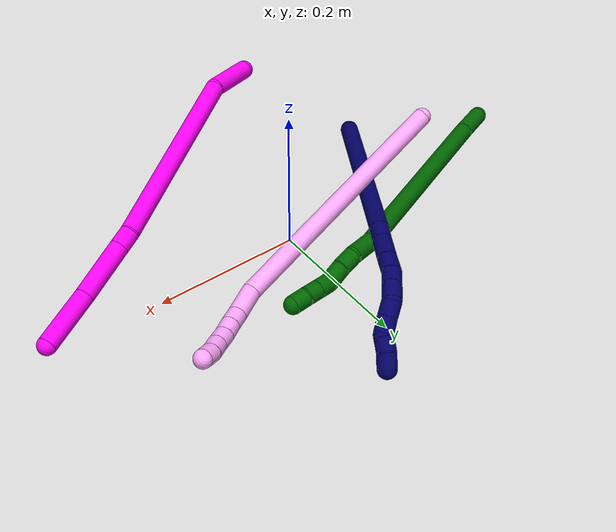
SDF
<sdf version="1.7">
 <world name="default">
  <model name="photoneo_s_sensor">
   <static>1</static>
   <pose>0 0 2 1.57079 1.57079 3.14159</pose>
   <link name="link">
    <inertial><mass>0.1</mass></inertial>
    <sensor name="sensor" type="depth">
     <update_rate>30</update_rate>
     <camera>
      <horizontal_fov>1.22</horizontal_fov>
      <image><width>1920</width><height>1200</height><format>B8G8R8</format></image>
      <clip><near>0.1</near><far>4</far></clip>
      <depth_camera><output>points</output></depth_camera>
     </camera>
     <plugin name="camera_plugin" filename="libgazebo_ros_depth_camera.so">
      <baseline>0.2</baseline>
      <alwaysOn>1</alwaysOn>
      <updateRate>0.0</updateRate>
      <cameraName>camera_ir</cameraName>
      <imageTopicName>/camera/color/image_raw</imageTopicName>
      <cameraInfoTopicName>/camera/color/camera_info</cameraInfoTopicName>
      <depthImageTopicName>/camera/depth/image_raw</depthImageTopicName>
      <depthImageCameraInfoTopicName>/camera/depth/camera_info</depthImageCameraInfoTopicName>
      <pointCloudTopicName>/camera/depth/points</pointCloudTopicName>
      <frameName>fr_optical</frameName>
      <pointCloudCutoff>0.1</pointCloudCutoff>
      <pointCloudCutoffMax>2.0</pointCloudCutoffMax>
      <distortionK1>0</distortionK1>
      <distortionK2>0</distortionK2>
      <distortionK3>0</distortionK3>
      <distortionT1>0</distortionT1>
      <distortionT2>0</distortionT2>
      <CxPrime>0</CxPrime>
      <Cx>0</Cx>
      <Cy>0</Cy>
      <focalLength>0</focalLength>
      <hackBaseline>0</hackBaseline>
     </plugin>
    </sensor>
   </link>
  </model>
  <model name="4">
   <static>0</static>
   <link name="4">
    <collision name="collision-cylinder-e_1_1_4">
     <pose>0.152644 0.08548 -0.040741 -2.01556 1.01555 -1.44513</pose>
     <geometry><cylinder><radius>0.0125</radius><length>0.359259</length></cylinder></geometry>
     <surface>
      <friction><ode><mu>1.16</mu><mu2>1.16</mu2><slip1>0</slip1><slip2>0</slip2></ode></friction>
      <contact><ode><kp>1e+06</kp><kd>1</kd><max_vel>0</max_vel><min_depth>0.001</min_depth></ode></contact>
     </surface>
    </collision>
    <visual name="visual-cylinder-e_1_1_4">
     <pose>0.152644 0.08548 -0.040741 -2.01556 1.01555 -1.44513</pose>
     <geometry><cylinder><radius>0.0125</radius><length>0.359259</length></cylinder></geometry>
     <material><ambient>1 0.65098 0.996078 1</ambient></material>
    </visual>
    <collision name="collision-cylinder-e_2_4_5">
     <pose>0.320754 0.183616 -0.081078 -1.53892 0.884749 -0.860328</pose>
     <geometry><cylinder><radius>0.0125</radius><length>0.039977</length></cylinder></geometry>
     <surface>
      <friction><ode><mu>1.16</mu><mu2>1.16</mu2><slip1>0</slip1><slip2>0</slip2></ode></friction>
      <contact><ode><kp>1e+06</kp><kd>1</kd><max_vel>0</max_vel><min_depth>0.001</min_depth></ode></contact>
     </surface>
    </collision>
    <visual name="visual-cylinder-e_2_4_5">
     <pose>0.320754 0.183616 -0.081078 -1.53892 0.884749 -0.860328</pose>
     <geometry><cylinder><radius>0.0125</radius><length>0.039977</length></cylinder></geometry>
     <material><ambient>1 0.65098 0.996078 1</ambient></material>
    </visual>
    <collision name="collision-cylinder-e_3_5_6">
     <pose>0.344297 0.202163 -0.078893 -1.27714 0.919701 -0.704615</pose>
     <geometry><cylinder><radius>0.0125</radius><length>0.020308</length></cylinder></geometry>
     <surface>
      <friction><ode><mu>1.16</mu><mu2>1.16</mu2><slip1>0</slip1><slip2>0</slip2></ode></friction>
      <contact><ode><kp>1e+06</kp><kd>1</kd><max_vel>0</max_vel><min_depth>0.001</min_depth></ode></contact>
     </surface>
    </collision>
    <visual name="visual-cylinder-e_3_5_6">
     <pose>0.344297 0.202163 -0.078893 -1.27714 0.919701 -0.704615</pose>
     <geometry><cylinder><radius>0.0125</radius><length>0.020308</length></cylinder></geometry>
     <material><ambient>1 0.65098 0.996078 1</ambient></material>
    </visual>
    <collision name="collision-cylinder-e_4_6_7">
     <pose>0.360102 0.214135 -0.075028 -1.24063 0.876878 -0.646424</pose>
     <geometry><cylinder><radius>0.0125</radius><length>0.020106</length></cylinder></geometry>
     <surface>
      <friction><ode><mu>1.16</mu><mu2>1.16</mu2><slip1>0</slip1><slip2>0</slip2></ode></friction>
      <contact><ode><kp>1e+06</kp><kd>1</kd><max_vel>0</max_vel><min_depth>0.001</min_depth></ode></contact>
     </surface>
    </collision>
    <visual name="visual-cylinder-e_4_6_7">
     <pose>0.360102 0.214135 -0.075028 -1.24063 0.876878 -0.646424</pose>
     <geometry><cylinder><radius>0.0125</radius><length>0.020106</length></cylinder></geometry>
     <material><ambient>1 0.65098 0.996078 1</ambient></material>
    </visual>
    <collision name="collision-cylinder-e_5_7_8">
     <pose>0.375994 0.225404 -0.070085 -1.0672 0.94325 -0.58529</pose>
     <geometry><cylinder><radius>0.0125</radius><length>0.020172</length></cylinder></geometry>
     <surface>
      <friction><ode><mu>1.16</mu><mu2>1.16</mu2><slip1>0</slip1><slip2>0</slip2></ode></friction>
      <contact><ode><kp>1e+06</kp><kd>1</kd><max_vel>0</max_vel><min_depth>0.001</min_depth></ode></contact>
     </surface>
    </collision>
    <visual name="visual-cylinder-e_5_7_8">
     <pose>0.375994 0.225404 -0.070085 -1.0672 0.94325 -0.58529</pose>
     <geometry><cylinder><radius>0.0125</radius><length>0.020172</length></cylinder></geometry>
     <material><ambient>1 0.65098 0.996078 1</ambient></material>
    </visual>
    <collision name="collision-cylinder-e_6_8_9">
     <pose>0.391863 0.235803 -0.063366 -0.933111 0.871049 -0.460403</pose>
     <geometry><cylinder><radius>0.0125</radius><length>0.020143</length></cylinder></geometry>
     <surface>
      <friction><ode><mu>1.16</mu><mu2>1.16</mu2><slip1>0</slip1><slip2>0</slip2></ode></friction>
      <contact><ode><kp>1e+06</kp><kd>1</kd><max_vel>0</max_vel><min_depth>0.001</min_depth></ode></contact>
     </surface>
    </collision>
    <visual name="visual-cylinder-e_6_8_9">
     <pose>0.391863 0.235803 -0.063366 -0.933111 0.871049 -0.460403</pose>
     <geometry><cylinder><radius>0.0125</radius><length>0.020143</length></cylinder></geometry>
     <material><ambient>1 0.65098 0.996078 1</ambient></material>
    </visual>
    <collision name="collision-cylinder-e_7_9_2">
     <pose>0.408184 0.244461 -0.055731 -0.740165 1.03544 -0.434928</pose>
     <geometry><cylinder><radius>0.0125</radius><length>0.020035</length></cylinder></geometry>
     <surface>
      <friction><ode><mu>1.16</mu><mu2>1.16</mu2><slip1>0</slip1><slip2>0</slip2></ode></friction>
      <contact><ode><kp>1e+06</kp><kd>1</kd><max_vel>0</max_vel><min_depth>0.001</min_depth></ode></contact>
     </surface>
    </collision>
    <visual name="visual-cylinder-e_7_9_2">
     <pose>0.408184 0.244461 -0.055731 -0.740165 1.03544 -0.434928</pose>
     <geometry><cylinder><radius>0.0125</radius><length>0.020035</length></cylinder></geometry>
     <material><ambient>1 0.65098 0.996078 1</ambient></material>
    </visual>
    <collision name="collision-sphere-2">
     <pose>0.4168 0.247907 -0.051958 0 -0 0</pose>
     <geometry><sphere><radius>0.0125</radius></sphere></geometry>
     <surface>
      <friction><ode><mu>1.16</mu><mu2>1.16</mu2><slip1>0</slip1><slip2>0</slip2></ode></friction>
      <contact><ode><kp>1e+06</kp><kd>1</kd><max_vel>0</max_vel><min_depth>0.001</min_depth></ode></contact>
     </surface>
    </collision>
    <visual name="visual-sphere-2">
     <pose>0.4168 0.247907 -0.051958 0 -0 0</pose>
     <geometry><sphere><radius>0.0125</radius></sphere></geometry>
     <material><ambient>1 0.65098 0.996078 1</ambient></material>
    </visual>
    <collision name="collision-sphere-9">
     <pose>0.399568 0.241014 -0.059504 0 -0 0</pose>
     <geometry><sphere><radius>0.0125</radius></sphere></geometry>
     <surface>
      <friction><ode><mu>1.16</mu><mu2>1.16</mu2><slip1>0</slip1><slip2>0</slip2></ode></friction>
      <contact><ode><kp>1e+06</kp><kd>1</kd><max_vel>0</max_vel><min_depth>0.001</min_depth></ode></contact>
     </surface>
    </collision>
    <visual name="visual-sphere-9">
     <pose>0.399568 0.241014 -0.059504 0 -0 0</pose>
     <geometry><sphere><radius>0.0125</radius></sphere></geometry>
     <material><ambient>1 0.65098 0.996078 1</ambient></material>
    </visual>
    <collision name="collision-sphere-4">
     <pose>0.305288 0.17096 -0.081482 0 -0 0</pose>
     <geometry><sphere><radius>0.0125</radius></sphere></geometry>
     <surface>
      <friction><ode><mu>1.16</mu><mu2>1.16</mu2><slip1>0</slip1><slip2>0</slip2></ode></friction>
      <contact><ode><kp>1e+06</kp><kd>1</kd><max_vel>0</max_vel><min_depth>0.001</min_depth></ode></contact>
     </surface>
    </collision>
    <visual name="visual-sphere-4">
     <pose>0.305288 0.17096 -0.081482 0 -0 0</pose>
     <geometry><sphere><radius>0.0125</radius></sphere></geometry>
     <material><ambient>1 0.65098 0.996078 1</ambient></material>
    </visual>
    <collision name="collision-sphere-1">
     <geometry><sphere><radius>0.0125</radius></sphere></geometry>
     <surface>
      <friction><ode><mu>1.16</mu><mu2>1.16</mu2><slip1>0</slip1><slip2>0</slip2></ode></friction>
      <contact><ode><kp>1e+06</kp><kd>1</kd><max_vel>0</max_vel><min_depth>0.001</min_depth></ode></contact>
     </surface>
    </collision>
    <visual name="visual-sphere-1">
     <geometry><sphere><radius>0.0125</radius></sphere></geometry>
     <material><ambient>1 0.65098 0.996078 1</ambient></material>
    </visual>
    <collision name="collision-sphere-8">
     <pose>0.384159 0.230591 -0.067227 0 -0 0</pose>
     <geometry><sphere><radius>0.0125</radius></sphere></geometry>
     <surface>
      <friction><ode><mu>1.16</mu><mu2>1.16</mu2><slip1>0</slip1><slip2>0</slip2></ode></friction>
      <contact><ode><kp>1e+06</kp><kd>1</kd><max_vel>0</max_vel><min_depth>0.001</min_depth></ode></contact>
     </surface>
    </collision>
    <visual name="visual-sphere-8">
     <pose>0.384159 0.230591 -0.067227 0 -0 0</pose>
     <geometry><sphere><radius>0.0125</radius></sphere></geometry>
     <material><ambient>1 0.65098 0.996078 1</ambient></material>
    </visual>
    <collision name="collision-sphere-5">
     <pose>0.33622 0.196272 -0.080674 0 -0 0</pose>
     <geometry><sphere><radius>0.0125</radius></sphere></geometry>
     <surface>
      <friction><ode><mu>1.16</mu><mu2>1.16</mu2><slip1>0</slip1><slip2>0</slip2></ode></friction>
      <contact><ode><kp>1e+06</kp><kd>1</kd><max_vel>0</max_vel><min_depth>0.001</min_depth></ode></contact>
     </surface>
    </collision>
    <visual name="visual-sphere-5">
     <pose>0.33622 0.196272 -0.080674 0 -0 0</pose>
     <geometry><sphere><radius>0.0125</radius></sphere></geometry>
     <material><ambient>1 0.65098 0.996078 1</ambient></material>
    </visual>
    <collision name="collision-sphere-6">
     <pose>0.352374 0.208053 -0.077112 0 -0 0</pose>
     <geometry><sphere><radius>0.0125</radius></sphere></geometry>
     <surface>
      <friction><ode><mu>1.16</mu><mu2>1.16</mu2><slip1>0</slip1><slip2>0</slip2></ode></friction>
      <contact><ode><kp>1e+06</kp><kd>1</kd><max_vel>0</max_vel><min_depth>0.001</min_depth></ode></contact>
     </surface>
    </collision>
    <visual name="visual-sphere-6">
     <pose>0.352374 0.208053 -0.077112 0 -0 0</pose>
     <geometry><sphere><radius>0.0125</radius></sphere></geometry>
     <material><ambient>1 0.65098 0.996078 1</ambient></material>
    </visual>
    <collision name="collision-sphere-7">
     <pose>0.36783 0.220217 -0.072943 0 -0 0</pose>
     <geometry><sphere><radius>0.0125</radius></sphere></geometry>
     <surface>
      <friction><ode><mu>1.16</mu><mu2>1.16</mu2><slip1>0</slip1><slip2>0</slip2></ode></friction>
      <contact><ode><kp>1e+06</kp><kd>1</kd><max_vel>0</max_vel><min_depth>0.001</min_depth></ode></contact>
     </surface>
    </collision>
    <visual name="visual-sphere-7">
     <pose>0.36783 0.220217 -0.072943 0 -0 0</pose>
     <geometry><sphere><radius>0.0125</radius></sphere></geometry>
     <material><ambient>1 0.65098 0.996078 1</ambient></material>
    </visual>
    <inertial>
     <pose>0.211099 0.12131 -0.04959 0 -0 0</pose>
     <mass>0.5</mass>
     <inertia>
      <ixx>-0.001739</ixx>
      <ixy>0</ixy>
      <ixz>0</ixz>
      <iyy>0.000738</iyy>
      <iyz>0</iyz>
      <izz>-0.005164</izz>
     </inertia>
    </inertial>
   </link>
   <pose>-0.234493 -0.011469 0.094542 -0.520944 -0.255443 -0.087855</pose>
  </model>
  <model name="6">
   <static>0</static>
   <link name="6">
    <collision name="collision-cylinder-e_1_1_4">
     <pose>0.020209 0.005218 -0.014325 -2.79229 0.924495 -2.46088</pose>
     <geometry><cylinder><radius>0.0125</radius><length>0.050628</length></cylinder></geometry>
     <surface>
      <friction><ode><mu>1.16</mu><mu2>1.16</mu2><slip1>0</slip1><slip2>0</slip2></ode></friction>
      <contact><ode><kp>1e+06</kp><kd>1</kd><max_vel>0</max_vel><min_depth>0.001</min_depth></ode></contact>
     </surface>
    </collision>
    <visual name="visual-cylinder-e_1_1_4">
     <pose>0.020209 0.005218 -0.014325 -2.79229 0.924495 -2.46088</pose>
     <geometry><cylinder><radius>0.0125</radius><length>0.050628</length></cylinder></geometry>
     <material><ambient>0 0.392157 0.003922 1</ambient></material>
    </visual>
    <collision name="collision-cylinder-e_2_4_5">
     <pose>0.15849 0.043932 -0.114631 -2.77011 0.907425 -2.40598</pose>
     <geometry><cylinder><radius>0.0125</radius><length>0.299708</length></cylinder></geometry>
     <surface>
      <friction><ode><mu>1.16</mu><mu2>1.16</mu2><slip1>0</slip1><slip2>0</slip2></ode></friction>
      <contact><ode><kp>1e+06</kp><kd>1</kd><max_vel>0</max_vel><min_depth>0.001</min_depth></ode></contact>
     </surface>
    </collision>
    <visual name="visual-cylinder-e_2_4_5">
     <pose>0.15849 0.043932 -0.114631 -2.77011 0.907425 -2.40598</pose>
     <geometry><cylinder><radius>0.0125</radius><length>0.299708</length></cylinder></geometry>
     <material><ambient>0 0.392157 0.003922 1</ambient></material>
    </visual>
    <collision name="collision-cylinder-e_3_5_6">
     <pose>0.293527 0.079375 -0.210938 -2.95523 1.01628 -2.80909</pose>
     <geometry><cylinder><radius>0.0125</radius><length>0.039906</length></cylinder></geometry>
     <surface>
      <friction><ode><mu>1.16</mu><mu2>1.16</mu2><slip1>0</slip1><slip2>0</slip2></ode></friction>
      <contact><ode><kp>1e+06</kp><kd>1</kd><max_vel>0</max_vel><min_depth>0.001</min_depth></ode></contact>
     </surface>
    </collision>
    <visual name="visual-cylinder-e_3_5_6">
     <pose>0.293527 0.079375 -0.210938 -2.95523 1.01628 -2.80909</pose>
     <geometry><cylinder><radius>0.0125</radius><length>0.039906</length></cylinder></geometry>
     <material><ambient>0 0.392157 0.003922 1</ambient></material>
    </visual>
    <collision name="collision-cylinder-e_4_6_7">
     <pose>0.317815 0.081483 -0.230494 -3.12409 0.670611 -3.09136</pose>
     <geometry><cylinder><radius>0.0125</radius><length>0.023572</length></cylinder></geometry>
     <surface>
      <friction><ode><mu>1.16</mu><mu2>1.16</mu2><slip1>0</slip1><slip2>0</slip2></ode></friction>
      <contact><ode><kp>1e+06</kp><kd>1</kd><max_vel>0</max_vel><min_depth>0.001</min_depth></ode></contact>
     </surface>
    </collision>
    <visual name="visual-cylinder-e_4_6_7">
     <pose>0.317815 0.081483 -0.230494 -3.12409 0.670611 -3.09136</pose>
     <geometry><cylinder><radius>0.0125</radius><length>0.023572</length></cylinder></geometry>
     <material><ambient>0 0.392157 0.003922 1</ambient></material>
    </visual>
    <collision name="collision-cylinder-e_5_7_8">
     <pose>0.331814 0.081884 -0.250855 -3.12007 0.540139 -3.06388</pose>
     <geometry><cylinder><radius>0.0125</radius><length>0.025958</length></cylinder></geometry>
     <surface>
      <friction><ode><mu>1.16</mu><mu2>1.16</mu2><slip1>0</slip1><slip2>0</slip2></ode></friction>
      <contact><ode><kp>1e+06</kp><kd>1</kd><max_vel>0</max_vel><min_depth>0.001</min_depth></ode></contact>
     </surface>
    </collision>
    <visual name="visual-cylinder-e_5_7_8">
     <pose>0.331814 0.081884 -0.250855 -3.12007 0.540139 -3.06388</pose>
     <geometry><cylinder><radius>0.0125</radius><length>0.025958</length></cylinder></geometry>
     <material><ambient>0 0.392157 0.003922 1</ambient></material>
    </visual>
    <collision name="collision-cylinder-e_6_8_9">
     <pose>0.346712 0.08155 -0.267708 3.04173 0.960383 2.95029</pose>
     <geometry><cylinder><radius>0.0125</radius><length>0.020073</length></cylinder></geometry>
     <surface>
      <friction><ode><mu>1.16</mu><mu2>1.16</mu2><slip1>0</slip1><slip2>0</slip2></ode></friction>
      <contact><ode><kp>1e+06</kp><kd>1</kd><max_vel>0</max_vel><min_depth>0.001</min_depth></ode></contact>
     </surface>
    </collision>
    <visual name="visual-cylinder-e_6_8_9">
     <pose>0.346712 0.08155 -0.267708 3.04173 0.960383 2.95029</pose>
     <geometry><cylinder><radius>0.0125</radius><length>0.020073</length></cylinder></geometry>
     <material><ambient>0 0.392157 0.003922 1</ambient></material>
    </visual>
    <collision name="collision-cylinder-e_7_9_10">
     <pose>0.363188 0.08041 -0.279125 3.04249 0.964573 2.9527</pose>
     <geometry><cylinder><radius>0.0125</radius><length>0.020081</length></cylinder></geometry>
     <surface>
      <friction><ode><mu>1.16</mu><mu2>1.16</mu2><slip1>0</slip1><slip2>0</slip2></ode></friction>
      <contact><ode><kp>1e+06</kp><kd>1</kd><max_vel>0</max_vel><min_depth>0.001</min_depth></ode></contact>
     </surface>
    </collision>
    <visual name="visual-cylinder-e_7_9_10">
     <pose>0.363188 0.08041 -0.279125 3.04249 0.964573 2.9527</pose>
     <geometry><cylinder><radius>0.0125</radius><length>0.020081</length></cylinder></geometry>
     <material><ambient>0 0.392157 0.003922 1</ambient></material>
    </visual>
    <collision name="collision-cylinder-e_8_10_2">
     <pose>0.378521 0.078194 -0.291736 2.90736 0.783209 2.58645</pose>
     <geometry><cylinder><radius>0.0125</radius><length>0.020073</length></cylinder></geometry>
     <surface>
      <friction><ode><mu>1.16</mu><mu2>1.16</mu2><slip1>0</slip1><slip2>0</slip2></ode></friction>
      <contact><ode><kp>1e+06</kp><kd>1</kd><max_vel>0</max_vel><min_depth>0.001</min_depth></ode></contact>
     </surface>
    </collision>
    <visual name="visual-cylinder-e_8_10_2">
     <pose>0.378521 0.078194 -0.291736 2.90736 0.783209 2.58645</pose>
     <geometry><cylinder><radius>0.0125</radius><length>0.020073</length></cylinder></geometry>
     <material><ambient>0 0.392157 0.003922 1</ambient></material>
    </visual>
    <collision name="collision-sphere-2">
     <pose>0.385602 0.076543 -0.298654 0 -0 0</pose>
     <geometry><sphere><radius>0.0125</radius></sphere></geometry>
     <surface>
      <friction><ode><mu>1.16</mu><mu2>1.16</mu2><slip1>0</slip1><slip2>0</slip2></ode></friction>
      <contact><ode><kp>1e+06</kp><kd>1</kd><max_vel>0</max_vel><min_depth>0.001</min_depth></ode></contact>
     </surface>
    </collision>
    <visual name="visual-sphere-2">
     <pose>0.385602 0.076543 -0.298654 0 -0 0</pose>
     <geometry><sphere><radius>0.0125</radius></sphere></geometry>
     <material><ambient>0 0.392157 0.003922 1</ambient></material>
    </visual>
    <collision name="collision-sphere-10">
     <pose>0.371439 0.079844 -0.284818 0 -0 0</pose>
     <geometry><sphere><radius>0.0125</radius></sphere></geometry>
     <surface>
      <friction><ode><mu>1.16</mu><mu2>1.16</mu2><slip1>0</slip1><slip2>0</slip2></ode></friction>
      <contact><ode><kp>1e+06</kp><kd>1</kd><max_vel>0</max_vel><min_depth>0.001</min_depth></ode></contact>
     </surface>
    </collision>
    <visual name="visual-sphere-10">
     <pose>0.371439 0.079844 -0.284818 0 -0 0</pose>
     <geometry><sphere><radius>0.0125</radius></sphere></geometry>
     <material><ambient>0 0.392157 0.003922 1</ambient></material>
    </visual>
    <collision name="collision-sphere-9">
     <pose>0.354936 0.080976 -0.273432 0 -0 0</pose>
     <geometry><sphere><radius>0.0125</radius></sphere></geometry>
     <surface>
      <friction><ode><mu>1.16</mu><mu2>1.16</mu2><slip1>0</slip1><slip2>0</slip2></ode></friction>
      <contact><ode><kp>1e+06</kp><kd>1</kd><max_vel>0</max_vel><min_depth>0.001</min_depth></ode></contact>
     </surface>
    </collision>
    <visual name="visual-sphere-9">
     <pose>0.354936 0.080976 -0.273432 0 -0 0</pose>
     <geometry><sphere><radius>0.0125</radius></sphere></geometry>
     <material><ambient>0 0.392157 0.003922 1</ambient></material>
    </visual>
    <collision name="collision-sphere-4">
     <pose>0.040418 0.010435 -0.028649 0 -0 0</pose>
     <geometry><sphere><radius>0.0125</radius></sphere></geometry>
     <surface>
      <friction><ode><mu>1.16</mu><mu2>1.16</mu2><slip1>0</slip1><slip2>0</slip2></ode></friction>
      <contact><ode><kp>1e+06</kp><kd>1</kd><max_vel>0</max_vel><min_depth>0.001</min_depth></ode></contact>
     </surface>
    </collision>
    <visual name="visual-sphere-4">
     <pose>0.040418 0.010435 -0.028649 0 -0 0</pose>
     <geometry><sphere><radius>0.0125</radius></sphere></geometry>
     <material><ambient>0 0.392157 0.003922 1</ambient></material>
    </visual>
    <collision name="collision-sphere-1">
     <geometry><sphere><radius>0.0125</radius></sphere></geometry>
     <surface>
      <friction><ode><mu>1.16</mu><mu2>1.16</mu2><slip1>0</slip1><slip2>0</slip2></ode></friction>
      <contact><ode><kp>1e+06</kp><kd>1</kd><max_vel>0</max_vel><min_depth>0.001</min_depth></ode></contact>
     </surface>
    </collision>
    <visual name="visual-sphere-1">
     <geometry><sphere><radius>0.0125</radius></sphere></geometry>
     <material><ambient>0 0.392157 0.003922 1</ambient></material>
    </visual>
    <collision name="collision-sphere-8">
     <pose>0.338488 0.082124 -0.261984 0 -0 0</pose>
     <geometry><sphere><radius>0.0125</radius></sphere></geometry>
     <surface>
      <friction><ode><mu>1.16</mu><mu2>1.16</mu2><slip1>0</slip1><slip2>0</slip2></ode></friction>
      <contact><ode><kp>1e+06</kp><kd>1</kd><max_vel>0</max_vel><min_depth>0.001</min_depth></ode></contact>
     </surface>
    </collision>
    <visual name="visual-sphere-8">
     <pose>0.338488 0.082124 -0.261984 0 -0 0</pose>
     <geometry><sphere><radius>0.0125</radius></sphere></geometry>
     <material><ambient>0 0.392157 0.003922 1</ambient></material>
    </visual>
    <collision name="collision-sphere-5">
     <pose>0.276563 0.077428 -0.200614 0 -0 0</pose>
     <geometry><sphere><radius>0.0125</radius></sphere></geometry>
     <surface>
      <friction><ode><mu>1.16</mu><mu2>1.16</mu2><slip1>0</slip1><slip2>0</slip2></ode></friction>
      <contact><ode><kp>1e+06</kp><kd>1</kd><max_vel>0</max_vel><min_depth>0.001</min_depth></ode></contact>
     </surface>
    </collision>
    <visual name="visual-sphere-5">
     <pose>0.276563 0.077428 -0.200614 0 -0 0</pose>
     <geometry><sphere><radius>0.0125</radius></sphere></geometry>
     <material><ambient>0 0.392157 0.003922 1</ambient></material>
    </visual>
    <collision name="collision-sphere-6">
     <pose>0.31049 0.081321 -0.221262 0 -0 0</pose>
     <geometry><sphere><radius>0.0125</radius></sphere></geometry>
     <surface>
      <friction><ode><mu>1.16</mu><mu2>1.16</mu2><slip1>0</slip1><slip2>0</slip2></ode></friction>
      <contact><ode><kp>1e+06</kp><kd>1</kd><max_vel>0</max_vel><min_depth>0.001</min_depth></ode></contact>
     </surface>
    </collision>
    <visual name="visual-sphere-6">
     <pose>0.31049 0.081321 -0.221262 0 -0 0</pose>
     <geometry><sphere><radius>0.0125</radius></sphere></geometry>
     <material><ambient>0 0.392157 0.003922 1</ambient></material>
    </visual>
    <collision name="collision-sphere-7">
     <pose>0.325139 0.081644 -0.239726 0 -0 0</pose>
     <geometry><sphere><radius>0.0125</radius></sphere></geometry>
     <surface>
      <friction><ode><mu>1.16</mu><mu2>1.16</mu2><slip1>0</slip1><slip2>0</slip2></ode></friction>
      <contact><ode><kp>1e+06</kp><kd>1</kd><max_vel>0</max_vel><min_depth>0.001</min_depth></ode></contact>
     </surface>
    </collision>
    <visual name="visual-sphere-7">
     <pose>0.325139 0.081644 -0.239726 0 -0 0</pose>
     <geometry><sphere><radius>0.0125</radius></sphere></geometry>
     <material><ambient>0 0.392157 0.003922 1</ambient></material>
    </visual>
    <inertial>
     <pose>0.196386 0.050932 -0.144557 0 -0 0</pose>
     <mass>0.5</mass>
     <inertia>
      <ixx>-0.001952</ixx>
      <ixy>0</ixy>
      <ixz>0</ixz>
      <iyy>0.001086</iyy>
      <iyz>0</iyz>
      <izz>-0.002329</izz>
     </inertia>
    </inertial>
   </link>
   <pose>-0.380441 -0.045178 0.012963 0.032462 -0.683677 0.169148</pose>
  </model>
  <model name="7">
   <static>0</static>
   <link name="7">
    <collision name="collision-cylinder-e_1_1_4">
     <pose>0.04597 0.096929 0.090964 -0.817135 0.33295 -0.145235</pose>
     <geometry><cylinder><radius>0.0125</radius><length>0.281304</length></cylinder></geometry>
     <surface>
      <friction><ode><mu>1.16</mu><mu2>1.16</mu2><slip1>0</slip1><slip2>0</slip2></ode></friction>
      <contact><ode><kp>1e+06</kp><kd>1</kd><max_vel>0</max_vel><min_depth>0.001</min_depth></ode></contact>
     </surface>
    </collision>
    <visual name="visual-cylinder-e_1_1_4">
     <pose>0.04597 0.096929 0.090964 -0.817135 0.33295 -0.145235</pose>
     <geometry><cylinder><radius>0.0125</radius><length>0.281304</length></cylinder></geometry>
     <material><ambient>0.003922 0 0.403922 1</ambient></material>
    </visual>
    <collision name="collision-cylinder-e_2_4_5">
     <pose>0.097053 0.203203 0.190429 -0.83266 0.384631 -0.17178</pose>
     <geometry><cylinder><radius>0.0125</radius><length>0.027257</length></cylinder></geometry>
     <surface>
      <friction><ode><mu>1.16</mu><mu2>1.16</mu2><slip1>0</slip1><slip2>0</slip2></ode></friction>
      <contact><ode><kp>1e+06</kp><kd>1</kd><max_vel>0</max_vel><min_depth>0.001</min_depth></ode></contact>
     </surface>
    </collision>
    <visual name="visual-cylinder-e_2_4_5">
     <pose>0.097053 0.203203 0.190429 -0.83266 0.384631 -0.17178</pose>
     <geometry><cylinder><radius>0.0125</radius><length>0.027257</length></cylinder></geometry>
     <material><ambient>0.003922 0 0.403922 1</ambient></material>
    </visual>
    <collision name="collision-cylinder-e_3_5_6">
     <pose>0.109134 0.226129 0.210967 -0.84557 0.366588 -0.166421</pose>
     <geometry><cylinder><radius>0.0125</radius><length>0.038879</length></cylinder></geometry>
     <surface>
      <friction><ode><mu>1.16</mu><mu2>1.16</mu2><slip1>0</slip1><slip2>0</slip2></ode></friction>
      <contact><ode><kp>1e+06</kp><kd>1</kd><max_vel>0</max_vel><min_depth>0.001</min_depth></ode></contact>
     </surface>
    </collision>
    <visual name="visual-cylinder-e_3_5_6">
     <pose>0.109134 0.226129 0.210967 -0.84557 0.366588 -0.166421</pose>
     <geometry><cylinder><radius>0.0125</radius><length>0.038879</length></cylinder></geometry>
     <material><ambient>0.003922 0 0.403922 1</ambient></material>
    </visual>
    <collision name="collision-cylinder-e_4_6_7">
     <pose>0.120945 0.248832 0.229724 -0.935929 0.403921 -0.206232</pose>
     <geometry><cylinder><radius>0.0125</radius><length>0.024643</length></cylinder></geometry>
     <surface>
      <friction><ode><mu>1.16</mu><mu2>1.16</mu2><slip1>0</slip1><slip2>0</slip2></ode></friction>
      <contact><ode><kp>1e+06</kp><kd>1</kd><max_vel>0</max_vel><min_depth>0.001</min_depth></ode></contact>
     </surface>
    </collision>
    <visual name="visual-cylinder-e_4_6_7">
     <pose>0.120945 0.248832 0.229724 -0.935929 0.403921 -0.206232</pose>
     <geometry><cylinder><radius>0.0125</radius><length>0.024643</length></cylinder></geometry>
     <material><ambient>0.003922 0 0.403922 1</ambient></material>
    </visual>
    <collision name="collision-cylinder-e_5_7_8">
     <pose>0.131898 0.264337 0.241726 -0.879386 0.635442 -0.306964</pose>
     <geometry><cylinder><radius>0.0125</radius><length>0.02059</length></cylinder></geometry>
     <surface>
      <friction><ode><mu>1.16</mu><mu2>1.16</mu2><slip1>0</slip1><slip2>0</slip2></ode></friction>
      <contact><ode><kp>1e+06</kp><kd>1</kd><max_vel>0</max_vel><min_depth>0.001</min_depth></ode></contact>
     </surface>
    </collision>
    <visual name="visual-cylinder-e_5_7_8">
     <pose>0.131898 0.264337 0.241726 -0.879386 0.635442 -0.306964</pose>
     <geometry><cylinder><radius>0.0125</radius><length>0.02059</length></cylinder></geometry>
     <material><ambient>0.003922 0 0.403922 1</ambient></material>
    </visual>
    <collision name="collision-cylinder-e_6_8_9">
     <pose>0.145683 0.278075 0.253021 -0.885585 0.679557 -0.332157</pose>
     <geometry><cylinder><radius>0.0125</radius><length>0.024424</length></cylinder></geometry>
     <surface>
      <friction><ode><mu>1.16</mu><mu2>1.16</mu2><slip1>0</slip1><slip2>0</slip2></ode></friction>
      <contact><ode><kp>1e+06</kp><kd>1</kd><max_vel>0</max_vel><min_depth>0.001</min_depth></ode></contact>
     </surface>
    </collision>
    <visual name="visual-cylinder-e_6_8_9">
     <pose>0.145683 0.278075 0.253021 -0.885585 0.679557 -0.332157</pose>
     <geometry><cylinder><radius>0.0125</radius><length>0.024424</length></cylinder></geometry>
     <material><ambient>0.003922 0 0.403922 1</ambient></material>
    </visual>
    <collision name="collision-cylinder-e_7_9_10">
     <pose>0.163051 0.2889 0.260987 -1.05781 1.18096 -0.746711</pose>
     <geometry><cylinder><radius>0.0125</radius><length>0.020959</length></cylinder></geometry>
     <surface>
      <friction><ode><mu>1.16</mu><mu2>1.16</mu2><slip1>0</slip1><slip2>0</slip2></ode></friction>
      <contact><ode><kp>1e+06</kp><kd>1</kd><max_vel>0</max_vel><min_depth>0.001</min_depth></ode></contact>
     </surface>
    </collision>
    <visual name="visual-cylinder-e_7_9_10">
     <pose>0.163051 0.2889 0.260987 -1.05781 1.18096 -0.746711</pose>
     <geometry><cylinder><radius>0.0125</radius><length>0.020959</length></cylinder></geometry>
     <material><ambient>0.003922 0 0.403922 1</ambient></material>
    </visual>
    <collision name="collision-cylinder-e_8_10_11">
     <pose>0.182183 0.296298 0.264953 -1.09761 1.13345 -0.742163</pose>
     <geometry><cylinder><radius>0.0125</radius><length>0.02084</length></cylinder></geometry>
     <surface>
      <friction><ode><mu>1.16</mu><mu2>1.16</mu2><slip1>0</slip1><slip2>0</slip2></ode></friction>
      <contact><ode><kp>1e+06</kp><kd>1</kd><max_vel>0</max_vel><min_depth>0.001</min_depth></ode></contact>
     </surface>
    </collision>
    <visual name="visual-cylinder-e_8_10_11">
     <pose>0.182183 0.296298 0.264953 -1.09761 1.13345 -0.742163</pose>
     <geometry><cylinder><radius>0.0125</radius><length>0.02084</length></cylinder></geometry>
     <material><ambient>0.003922 0 0.403922 1</ambient></material>
    </visual>
    <collision name="collision-cylinder-e_9_11_12">
     <pose>0.199224 0.306374 0.264691 -1.92494 0.859234 -1.16378</pose>
     <geometry><cylinder><radius>0.0125</radius><length>0.020075</length></cylinder></geometry>
     <surface>
      <friction><ode><mu>1.16</mu><mu2>1.16</mu2><slip1>0</slip1><slip2>0</slip2></ode></friction>
      <contact><ode><kp>1e+06</kp><kd>1</kd><max_vel>0</max_vel><min_depth>0.001</min_depth></ode></contact>
     </surface>
    </collision>
    <visual name="visual-cylinder-e_9_11_12">
     <pose>0.199224 0.306374 0.264691 -1.92494 0.859234 -1.16378</pose>
     <geometry><cylinder><radius>0.0125</radius><length>0.020075</length></cylinder></geometry>
     <material><ambient>0.003922 0 0.403922 1</ambient></material>
    </visual>
    <collision name="collision-cylinder-e_10_12_2">
     <pose>0.215677 0.317941 0.260729 -1.87292 1.00053 -1.27794</pose>
     <geometry><cylinder><radius>0.0125</radius><length>0.02103</length></cylinder></geometry>
     <surface>
      <friction><ode><mu>1.16</mu><mu2>1.16</mu2><slip1>0</slip1><slip2>0</slip2></ode></friction>
      <contact><ode><kp>1e+06</kp><kd>1</kd><max_vel>0</max_vel><min_depth>0.001</min_depth></ode></contact>
     </surface>
    </collision>
    <visual name="visual-cylinder-e_10_12_2">
     <pose>0.215677 0.317941 0.260729 -1.87292 1.00053 -1.27794</pose>
     <geometry><cylinder><radius>0.0125</radius><length>0.02103</length></cylinder></geometry>
     <material><ambient>0.003922 0 0.403922 1</ambient></material>
    </visual>
    <collision name="collision-sphere-2">
     <pose>0.224528 0.323361 0.25904 0 -0 0</pose>
     <geometry><sphere><radius>0.0125</radius></sphere></geometry>
     <surface>
      <friction><ode><mu>1.16</mu><mu2>1.16</mu2><slip1>0</slip1><slip2>0</slip2></ode></friction>
      <contact><ode><kp>1e+06</kp><kd>1</kd><max_vel>0</max_vel><min_depth>0.001</min_depth></ode></contact>
     </surface>
    </collision>
    <visual name="visual-sphere-2">
     <pose>0.224528 0.323361 0.25904 0 -0 0</pose>
     <geometry><sphere><radius>0.0125</radius></sphere></geometry>
     <material><ambient>0.003922 0 0.403922 1</ambient></material>
    </visual>
    <collision name="collision-sphere-12">
     <pose>0.206826 0.312522 0.262418 0 -0 0</pose>
     <geometry><sphere><radius>0.0125</radius></sphere></geometry>
     <surface>
      <friction><ode><mu>1.16</mu><mu2>1.16</mu2><slip1>0</slip1><slip2>0</slip2></ode></friction>
      <contact><ode><kp>1e+06</kp><kd>1</kd><max_vel>0</max_vel><min_depth>0.001</min_depth></ode></contact>
     </surface>
    </collision>
    <visual name="visual-sphere-12">
     <pose>0.206826 0.312522 0.262418 0 -0 0</pose>
     <geometry><sphere><radius>0.0125</radius></sphere></geometry>
     <material><ambient>0.003922 0 0.403922 1</ambient></material>
    </visual>
    <collision name="collision-sphere-11">
     <pose>0.191623 0.300226 0.266964 0 -0 0</pose>
     <geometry><sphere><radius>0.0125</radius></sphere></geometry>
     <surface>
      <friction><ode><mu>1.16</mu><mu2>1.16</mu2><slip1>0</slip1><slip2>0</slip2></ode></friction>
      <contact><ode><kp>1e+06</kp><kd>1</kd><max_vel>0</max_vel><min_depth>0.001</min_depth></ode></contact>
     </surface>
    </collision>
    <visual name="visual-sphere-11">
     <pose>0.191623 0.300226 0.266964 0 -0 0</pose>
     <geometry><sphere><radius>0.0125</radius></sphere></geometry>
     <material><ambient>0.003922 0 0.403922 1</ambient></material>
    </visual>
    <collision name="collision-sphere-10">
     <pose>0.172744 0.29237 0.262941 0 -0 0</pose>
     <geometry><sphere><radius>0.0125</radius></sphere></geometry>
     <surface>
      <friction><ode><mu>1.16</mu><mu2>1.16</mu2><slip1>0</slip1><slip2>0</slip2></ode></friction>
      <contact><ode><kp>1e+06</kp><kd>1</kd><max_vel>0</max_vel><min_depth>0.001</min_depth></ode></contact>
     </surface>
    </collision>
    <visual name="visual-sphere-10">
     <pose>0.172744 0.29237 0.262941 0 -0 0</pose>
     <geometry><sphere><radius>0.0125</radius></sphere></geometry>
     <material><ambient>0.003922 0 0.403922 1</ambient></material>
    </visual>
    <collision name="collision-sphere-9">
     <pose>0.153357 0.28543 0.259032 0 -0 0</pose>
     <geometry><sphere><radius>0.0125</radius></sphere></geometry>
     <surface>
      <friction><ode><mu>1.16</mu><mu2>1.16</mu2><slip1>0</slip1><slip2>0</slip2></ode></friction>
      <contact><ode><kp>1e+06</kp><kd>1</kd><max_vel>0</max_vel><min_depth>0.001</min_depth></ode></contact>
     </surface>
    </collision>
    <visual name="visual-sphere-9">
     <pose>0.153357 0.28543 0.259032 0 -0 0</pose>
     <geometry><sphere><radius>0.0125</radius></sphere></geometry>
     <material><ambient>0.003922 0 0.403922 1</ambient></material>
    </visual>
    <collision name="collision-sphere-4">
     <pose>0.091939 0.193859 0.181928 0 -0 0</pose>
     <geometry><sphere><radius>0.0125</radius></sphere></geometry>
     <surface>
      <friction><ode><mu>1.16</mu><mu2>1.16</mu2><slip1>0</slip1><slip2>0</slip2></ode></friction>
      <contact><ode><kp>1e+06</kp><kd>1</kd><max_vel>0</max_vel><min_depth>0.001</min_depth></ode></contact>
     </surface>
    </collision>
    <visual name="visual-sphere-4">
     <pose>0.091939 0.193859 0.181928 0 -0 0</pose>
     <geometry><sphere><radius>0.0125</radius></sphere></geometry>
     <material><ambient>0.003922 0 0.403922 1</ambient></material>
    </visual>
    <collision name="collision-sphere-1">
     <geometry><sphere><radius>0.0125</radius></sphere></geometry>
     <surface>
      <friction><ode><mu>1.16</mu><mu2>1.16</mu2><slip1>0</slip1><slip2>0</slip2></ode></friction>
      <contact><ode><kp>1e+06</kp><kd>1</kd><max_vel>0</max_vel><min_depth>0.001</min_depth></ode></contact>
     </surface>
    </collision>
    <visual name="visual-sphere-1">
     <geometry><sphere><radius>0.0125</radius></sphere></geometry>
     <material><ambient>0.003922 0 0.403922 1</ambient></material>
    </visual>
    <collision name="collision-sphere-8">
     <pose>0.138008 0.270719 0.247009 0 -0 0</pose>
     <geometry><sphere><radius>0.0125</radius></sphere></geometry>
     <surface>
      <friction><ode><mu>1.16</mu><mu2>1.16</mu2><slip1>0</slip1><slip2>0</slip2></ode></friction>
      <contact><ode><kp>1e+06</kp><kd>1</kd><max_vel>0</max_vel><min_depth>0.001</min_depth></ode></contact>
     </surface>
    </collision>
    <visual name="visual-sphere-8">
     <pose>0.138008 0.270719 0.247009 0 -0 0</pose>
     <geometry><sphere><radius>0.0125</radius></sphere></geometry>
     <material><ambient>0.003922 0 0.403922 1</ambient></material>
    </visual>
    <collision name="collision-sphere-5">
     <pose>0.102167 0.212548 0.19893 0 -0 0</pose>
     <geometry><sphere><radius>0.0125</radius></sphere></geometry>
     <surface>
      <friction><ode><mu>1.16</mu><mu2>1.16</mu2><slip1>0</slip1><slip2>0</slip2></ode></friction>
      <contact><ode><kp>1e+06</kp><kd>1</kd><max_vel>0</max_vel><min_depth>0.001</min_depth></ode></contact>
     </surface>
    </collision>
    <visual name="visual-sphere-5">
     <pose>0.102167 0.212548 0.19893 0 -0 0</pose>
     <geometry><sphere><radius>0.0125</radius></sphere></geometry>
     <material><ambient>0.003922 0 0.403922 1</ambient></material>
    </visual>
    <collision name="collision-sphere-6">
     <pose>0.116102 0.23971 0.223005 0 -0 0</pose>
     <geometry><sphere><radius>0.0125</radius></sphere></geometry>
     <surface>
      <friction><ode><mu>1.16</mu><mu2>1.16</mu2><slip1>0</slip1><slip2>0</slip2></ode></friction>
      <contact><ode><kp>1e+06</kp><kd>1</kd><max_vel>0</max_vel><min_depth>0.001</min_depth></ode></contact>
     </surface>
    </collision>
    <visual name="visual-sphere-6">
     <pose>0.116102 0.23971 0.223005 0 -0 0</pose>
     <geometry><sphere><radius>0.0125</radius></sphere></geometry>
     <material><ambient>0.003922 0 0.403922 1</ambient></material>
    </visual>
    <collision name="collision-sphere-7">
     <pose>0.125787 0.257954 0.236443 0 -0 0</pose>
     <geometry><sphere><radius>0.0125</radius></sphere></geometry>
     <surface>
      <friction><ode><mu>1.16</mu><mu2>1.16</mu2><slip1>0</slip1><slip2>0</slip2></ode></friction>
      <contact><ode><kp>1e+06</kp><kd>1</kd><max_vel>0</max_vel><min_depth>0.001</min_depth></ode></contact>
     </surface>
    </collision>
    <visual name="visual-sphere-7">
     <pose>0.125787 0.257954 0.236443 0 -0 0</pose>
     <geometry><sphere><radius>0.0125</radius></sphere></geometry>
     <material><ambient>0.003922 0 0.403922 1</ambient></material>
    </visual>
    <inertial>
     <pose>0.089647 0.170059 0.155175 0 -0 0</pose>
     <mass>0.5</mass>
     <inertia>
      <ixx>0.001517</ixx>
      <ixy>0</ixy>
      <ixz>0</ixz>
      <iyy>0.001108</iyy>
      <iyz>0</iyz>
      <izz>-0.0019</izz>
     </inertia>
    </inertial>
   </link>
   <pose>-0.206217 -0.132959 0.012302 -0.113485 0.775588 0.156113</pose>
  </model>
  <model name="10">
   <static>0</static>
   <link name="10">
    <collision name="collision-cylinder-e_1_1_4">
     <pose>0.033636 -0.001764 -0.011465 2.98896 1.23869 2.92789</pose>
     <geometry><cylinder><radius>0.0125</radius><length>0.07116</length></cylinder></geometry>
     <surface>
      <friction><ode><mu>1.16</mu><mu2>1.16</mu2><slip1>0</slip1><slip2>0</slip2></ode></friction>
      <contact><ode><kp>1e+06</kp><kd>1</kd><max_vel>0</max_vel><min_depth>0.001</min_depth></ode></contact>
     </surface>
    </collision>
    <visual name="visual-cylinder-e_1_1_4">
     <pose>0.033636 -0.001764 -0.011465 2.98896 1.23869 2.92789</pose>
     <geometry><cylinder><radius>0.0125</radius><length>0.07116</length></cylinder></geometry>
     <material><ambient>1 0 0.964706 1</ambient></material>
    </visual>
    <collision name="collision-cylinder-e_2_4_5">
     <pose>0.190119 0.028623 -0.028483 -1.74181 1.3112 -1.48022</pose>
     <geometry><cylinder><radius>0.0125</radius><length>0.254212</length></cylinder></geometry>
     <surface>
      <friction><ode><mu>1.16</mu><mu2>1.16</mu2><slip1>0</slip1><slip2>0</slip2></ode></friction>
      <contact><ode><kp>1e+06</kp><kd>1</kd><max_vel>0</max_vel><min_depth>0.001</min_depth></ode></contact>
     </surface>
    </collision>
    <visual name="visual-cylinder-e_2_4_5">
     <pose>0.190119 0.028623 -0.028483 -1.74181 1.3112 -1.48022</pose>
     <geometry><cylinder><radius>0.0125</radius><length>0.254212</length></cylinder></geometry>
     <material><ambient>1 0 0.964706 1</ambient></material>
    </visual>
    <collision name="collision-cylinder-e_3_5_6">
     <pose>0.323405 0.065574 -0.035703 -1.9051 1.11777 -1.4425</pose>
     <geometry><cylinder><radius>0.0125</radius><length>0.023221</length></cylinder></geometry>
     <surface>
      <friction><ode><mu>1.16</mu><mu2>1.16</mu2><slip1>0</slip1><slip2>0</slip2></ode></friction>
      <contact><ode><kp>1e+06</kp><kd>1</kd><max_vel>0</max_vel><min_depth>0.001</min_depth></ode></contact>
     </surface>
    </collision>
    <visual name="visual-cylinder-e_3_5_6">
     <pose>0.323405 0.065574 -0.035703 -1.9051 1.11777 -1.4425</pose>
     <geometry><cylinder><radius>0.0125</radius><length>0.023221</length></cylinder></geometry>
     <material><ambient>1 0 0.964706 1</ambient></material>
    </visual>
    <collision name="collision-cylinder-e_4_6_7">
     <pose>0.367588 0.085403 -0.042515 -1.90057 1.13082 -1.45209</pose>
     <geometry><cylinder><radius>0.0125</radius><length>0.07459</length></cylinder></geometry>
     <surface>
      <friction><ode><mu>1.16</mu><mu2>1.16</mu2><slip1>0</slip1><slip2>0</slip2></ode></friction>
      <contact><ode><kp>1e+06</kp><kd>1</kd><max_vel>0</max_vel><min_depth>0.001</min_depth></ode></contact>
     </surface>
    </collision>
    <visual name="visual-cylinder-e_4_6_7">
     <pose>0.367588 0.085403 -0.042515 -1.90057 1.13082 -1.45209</pose>
     <geometry><cylinder><radius>0.0125</radius><length>0.07459</length></cylinder></geometry>
     <material><ambient>1 0 0.964706 1</ambient></material>
    </visual>
    <collision name="collision-cylinder-e_5_7_2">
     <pose>0.437716 0.11124 -0.05353 -2.06841 1.2448 -1.7573</pose>
     <geometry><cylinder><radius>0.0125</radius><length>0.076817</length></cylinder></geometry>
     <surface>
      <friction><ode><mu>1.16</mu><mu2>1.16</mu2><slip1>0</slip1><slip2>0</slip2></ode></friction>
      <contact><ode><kp>1e+06</kp><kd>1</kd><max_vel>0</max_vel><min_depth>0.001</min_depth></ode></contact>
     </surface>
    </collision>
    <visual name="visual-cylinder-e_5_7_2">
     <pose>0.437716 0.11124 -0.05353 -2.06841 1.2448 -1.7573</pose>
     <geometry><cylinder><radius>0.0125</radius><length>0.076817</length></cylinder></geometry>
     <material><ambient>1 0 0.964706 1</ambient></material>
    </visual>
    <collision name="collision-sphere-2">
     <pose>0.474102 0.122049 -0.059401 0 -0 0</pose>
     <geometry><sphere><radius>0.0125</radius></sphere></geometry>
     <surface>
      <friction><ode><mu>1.16</mu><mu2>1.16</mu2><slip1>0</slip1><slip2>0</slip2></ode></friction>
      <contact><ode><kp>1e+06</kp><kd>1</kd><max_vel>0</max_vel><min_depth>0.001</min_depth></ode></contact>
     </surface>
    </collision>
    <visual name="visual-sphere-2">
     <pose>0.474102 0.122049 -0.059401 0 -0 0</pose>
     <geometry><sphere><radius>0.0125</radius></sphere></geometry>
     <material><ambient>1 0 0.964706 1</ambient></material>
    </visual>
    <collision name="collision-sphere-7">
     <pose>0.401331 0.100432 -0.047659 0 -0 0</pose>
     <geometry><sphere><radius>0.0125</radius></sphere></geometry>
     <surface>
      <friction><ode><mu>1.16</mu><mu2>1.16</mu2><slip1>0</slip1><slip2>0</slip2></ode></friction>
      <contact><ode><kp>1e+06</kp><kd>1</kd><max_vel>0</max_vel><min_depth>0.001</min_depth></ode></contact>
     </surface>
    </collision>
    <visual name="visual-sphere-7">
     <pose>0.401331 0.100432 -0.047659 0 -0 0</pose>
     <geometry><sphere><radius>0.0125</radius></sphere></geometry>
     <material><ambient>1 0 0.964706 1</ambient></material>
    </visual>
    <collision name="collision-sphere-6">
     <pose>0.333844 0.070374 -0.037371 0 -0 0</pose>
     <geometry><sphere><radius>0.0125</radius></sphere></geometry>
     <surface>
      <friction><ode><mu>1.16</mu><mu2>1.16</mu2><slip1>0</slip1><slip2>0</slip2></ode></friction>
      <contact><ode><kp>1e+06</kp><kd>1</kd><max_vel>0</max_vel><min_depth>0.001</min_depth></ode></contact>
     </surface>
    </collision>
    <visual name="visual-sphere-6">
     <pose>0.333844 0.070374 -0.037371 0 -0 0</pose>
     <geometry><sphere><radius>0.0125</radius></sphere></geometry>
     <material><ambient>1 0 0.964706 1</ambient></material>
    </visual>
    <collision name="collision-sphere-5">
     <pose>0.312966 0.060773 -0.034036 0 -0 0</pose>
     <geometry><sphere><radius>0.0125</radius></sphere></geometry>
     <surface>
      <friction><ode><mu>1.16</mu><mu2>1.16</mu2><slip1>0</slip1><slip2>0</slip2></ode></friction>
      <contact><ode><kp>1e+06</kp><kd>1</kd><max_vel>0</max_vel><min_depth>0.001</min_depth></ode></contact>
     </surface>
    </collision>
    <visual name="visual-sphere-5">
     <pose>0.312966 0.060773 -0.034036 0 -0 0</pose>
     <geometry><sphere><radius>0.0125</radius></sphere></geometry>
     <material><ambient>1 0 0.964706 1</ambient></material>
    </visual>
    <collision name="collision-sphere-1">
     <geometry><sphere><radius>0.0125</radius></sphere></geometry>
     <surface>
      <friction><ode><mu>1.16</mu><mu2>1.16</mu2><slip1>0</slip1><slip2>0</slip2></ode></friction>
      <contact><ode><kp>1e+06</kp><kd>1</kd><max_vel>0</max_vel><min_depth>0.001</min_depth></ode></contact>
     </surface>
    </collision>
    <visual name="visual-sphere-1">
     <geometry><sphere><radius>0.0125</radius></sphere></geometry>
     <material><ambient>1 0 0.964706 1</ambient></material>
    </visual>
    <collision name="collision-sphere-4">
     <pose>0.067272 -0.003527 -0.022931 0 -0 0</pose>
     <geometry><sphere><radius>0.0125</radius></sphere></geometry>
     <surface>
      <friction><ode><mu>1.16</mu><mu2>1.16</mu2><slip1>0</slip1><slip2>0</slip2></ode></friction>
      <contact><ode><kp>1e+06</kp><kd>1</kd><max_vel>0</max_vel><min_depth>0.001</min_depth></ode></contact>
     </surface>
    </collision>
    <visual name="visual-sphere-4">
     <pose>0.067272 -0.003527 -0.022931 0 -0 0</pose>
     <geometry><sphere><radius>0.0125</radius></sphere></geometry>
     <material><ambient>1 0 0.964706 1</ambient></material>
    </visual>
    <inertial>
     <pose>0.238553 0.047178 -0.032338 0 -0 0</pose>
     <mass>0.5</mass>
     <inertia>
      <ixx>-0.000322</ixx>
      <ixy>0</ixy>
      <ixz>0</ixz>
      <iyy>0.001018</iyy>
      <iyz>0</iyz>
      <izz>-0.001817</izz>
     </inertia>
    </inertial>
   </link>
   <pose>-0.066227 -0.196761 0.139748 -1.95571 -0.002637 0.678888</pose>
  </model>
 </world>
</sdf>
